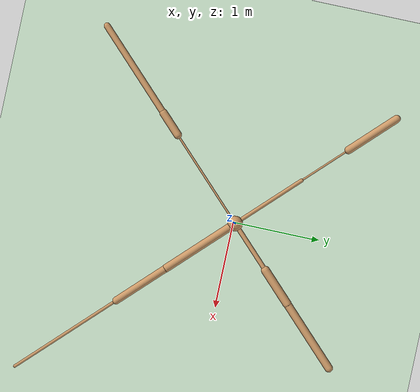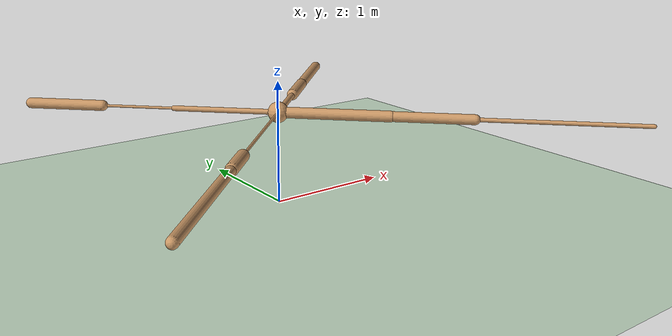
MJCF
<mujoco model="ant">
  <compiler angle="degree" coordinate="local" inertiafromgeom="true" />
  <option integrator="RK4" timestep="0.01" />
  <custom>
    <numeric data="0.0 0.0 0.55 1.0 0.0 0.0 0.0 0.0 1.0 0.0 -1.0 0.0 -1.0 0.0 1.0" name="init_qpos" />
  </custom>
  <default>
    <joint armature="1" damping="1" limited="true" />
    <geom conaffinity="0" condim="3" density="5.0" friction="1 0.5 0.5" margin="0.01" rgba="0.8 0.6 0.4 1" />
  </default>
  <asset>
    <texture builtin="gradient" height="100" rgb1="1 1 1" rgb2="0 0 0" type="skybox" width="100" />
    <texture builtin="flat" height="1278" mark="cross" markrgb="1 1 1" name="texgeom" random="0.01" rgb1="0.8 0.6 0.4" rgb2="0.8 0.6 0.4" type="cube" width="127" />
    <texture builtin="checker" height="100" name="texplane" rgb1="0 0 0" rgb2="0.8 0.8 0.8" type="2d" width="100" />
    <material name="MatPlane" reflectance="0.5" shininess="1" specular="1" texrepeat="60 60" texture="texplane" />
    <material name="geom" texture="texgeom" texuniform="true" />
  </asset>
  <worldbody>
    <light cutoff="100" diffuse="1 1 1" dir="-0 0 -1.3" directional="true" exponent="1" pos="0 0 1.3" specular=".1 .1 .1" />
    <geom conaffinity="1" condim="3" material="MatPlane" name="floor" pos="0 0 0" rgba="0.8 0.9 0.8 1" size="40 40 40" type="plane" />
    <body name="torso" pos="0 0 0.75">
      <camera name="track" mode="trackcom" pos="0 -11 5" xyaxes="1 0 0 0 0.5 1" />
      <geom name="torso_geom" pos="0 0 0" size="0.0834597647190094" type="sphere" />
      <joint armature="0" damping="0" limited="false" margin="0.01" name="root" pos="0 0 0" type="free" />
      <body name="front_left_leg" pos="0 0 0">
        <geom fromto="0 0 0 0.426267147064209 0.426267147064209 0" name="aux_1_geom" size="0.025351453572511673" type="capsule" />
        <body name="aux_1" pos="0.426267147064209 0.426267147064209 0">
          <joint axis="0 0 1" name="hip_1" pos="0.0 0.0 0.0" range="-30 30" type="hinge" />
          <geom fromto="0 0 0 0.30608493089675903 0.30608493089675903 0" name="left_leg_geom" size="0.04737014323472977" type="capsule" />
          <body name="left_leg_geom_aux" pos="0.30608493089675903 0.30608493089675903 0">
            <joint axis="-1 1 0" name="ankle_1" pos="0.0 0.0 0.0" range="30 70" type="hinge" />
            <geom fromto="0 0 0 0.5821937322616577 0.5821937322616577 0" name="left_ankle_geom" size="0.044198572635650635" type="capsule" />
          </body>
        </body>
      </body>
      <body name="front_right_leg" pos="0 0 0">
        <geom fromto="0 0 0 -0.6031047105789185 0.6031047105789185 0" name="aux_2_geom" size="0.02142035961151123" type="capsule" />
        <body name="aux_2" pos="-0.6031047105789185 0.6031047105789185 0">
          <joint axis="0 0 1" name="hip_2" pos="0.0 0.0 0.0" range="-30 30" type="hinge" />
          <geom fromto="0 0 0 -0.42829445004463196 0.42829445004463196 0" name="right_leg_geom" size="0.010569077916443348" type="capsule" />
          <body name="right_leg_geom_aux" pos="-0.42829445004463196 0.42829445004463196 0">
            <joint axis="1 1 0" name="ankle_2" pos="0.0 0.0 0.0" range="-70 -30" type="hinge" />
            <geom fromto="0 0 0 -0.4360610842704773 0.4360610842704773 0" name="right_ankle_geom" size="0.04323115199804306" type="capsule" />
          </body>
        </body>
      </body>
      <body name="back_leg" pos="0 0 0">
        <geom fromto="0 0 0 -0.8055881857872009 -0.8055881857872009 0" name="aux_3_geom" size="0.010847417637705803" type="capsule" />
        <body name="aux_3" pos="-0.8055881857872009 -0.8055881857872009 0">
          <joint axis="0 0 1" name="hip_3" pos="0.0 0.0 0.0" range="-30 30" type="hinge" />
          <geom fromto="0 0 0 -0.2004043459892273 -0.2004043459892273 0" name="back_leg_geom" size="0.044149793684482574" type="capsule" />
          <body name="back_leg_geom_aux" pos="-0.2004043459892273 -0.2004043459892273 0">
            <joint axis="-1 1 0" name="ankle_3" pos="0.0 0.0 0.0" range="-70 -30" type="hinge" />
            <geom fromto="0 0 0 -0.7900503873825073 -0.7900503873825073 0" name="third_ankle_geom" size="0.03566558286547661" type="capsule" />
          </body>
        </body>
      </body>
      <body name="right_back_leg" pos="0 0 0">
        <geom fromto="0 0 0 0.6273152828216553 -0.6273152828216553 0" name="aux_4_geom" size="0.044111452996730804" type="capsule" />
        <body name="aux_4" pos="0.6273152828216553 -0.6273152828216553 0">
          <joint axis="0 0 1" name="hip_4" pos="0.0 0.0 0.0" range="-30 30" type="hinge" />
          <geom fromto="0 0 0 0.45384061336517334 -0.45384061336517334 0" name="rightback_leg_geom" size="0.04063677787780762" type="capsule" />
          <body name="rightback_leg_geom_aux" pos="0.45384061336517334 -0.45384061336517334 0">
            <joint axis="1 1 0" name="ankle_4" pos="0.0 0.0 0.0" range="30 70" type="hinge" />
            <geom fromto="0 0 0 0.9205924868583679 -0.9205924868583679 0" name="fourth_ankle_geom" size="0.01657874323427677" type="capsule" />
          </body>
        </body>
      </body>
    </body>
  </worldbody>
  <actuator>
    <motor ctrllimited="true" ctrlrange="-1.0 1.0" joint="hip_4" gear="150" />
    <motor ctrllimited="true" ctrlrange="-1.0 1.0" joint="ankle_4" gear="150" />
    <motor ctrllimited="true" ctrlrange="-1.0 1.0" joint="hip_1" gear="150" />
    <motor ctrllimited="true" ctrlrange="-1.0 1.0" joint="ankle_1" gear="150" />
    <motor ctrllimited="true" ctrlrange="-1.0 1.0" joint="hip_2" gear="150" />
    <motor ctrllimited="true" ctrlrange="-1.0 1.0" joint="ankle_2" gear="150" />
    <motor ctrllimited="true" ctrlrange="-1.0 1.0" joint="hip_3" gear="150" />
    <motor ctrllimited="true" ctrlrange="-1.0 1.0" joint="ankle_3" gear="150" />
  </actuator>
</mujoco>
